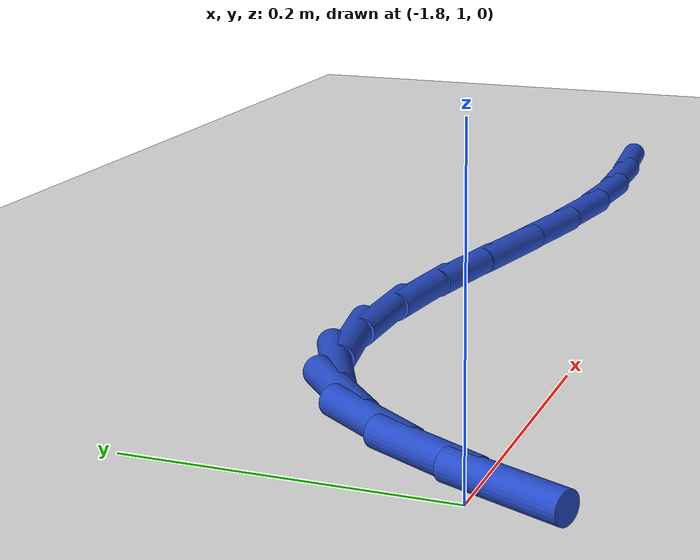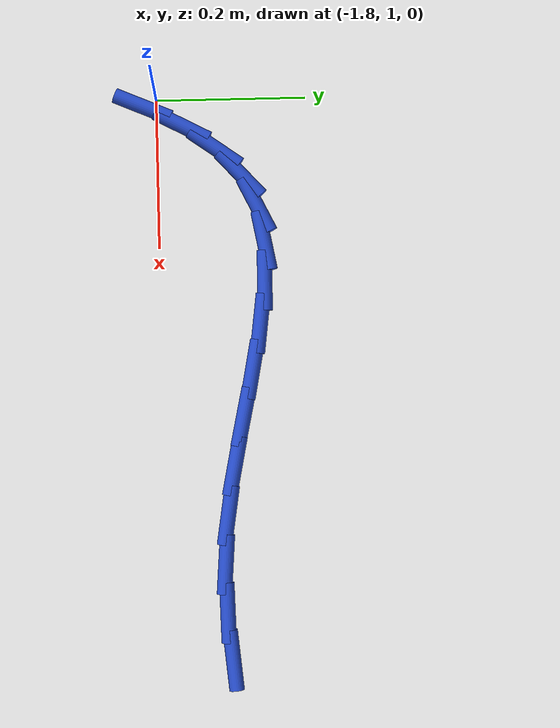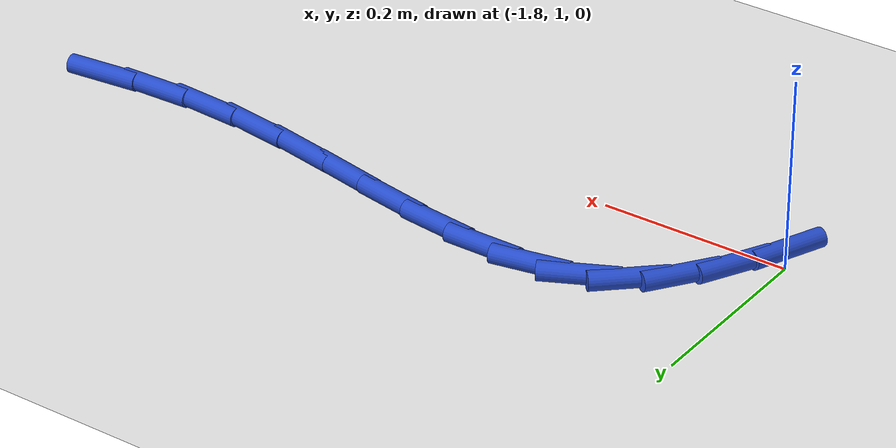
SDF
<sdf version="1.6">
 <world name="default">
  <model name="ground_plane">
   <static>1</static>
   <link name="link">
    <collision name="collision">
     <geometry><plane><normal>0 0 1</normal><size>100 100</size></plane></geometry>
     <surface><friction><ode><mu>100</mu><mu2>50</mu2></ode></friction></surface>
    </collision>
    <visual name="visual">
     <cast_shadows>0</cast_shadows>
     <geometry><plane><normal>0 0 1</normal><size>100 100</size></plane></geometry>
     <material>
      <script><uri>file://media/materials/scripts/gazebo.material</uri><name>Gazebo/WhiteGlow</name></script>
     </material>
    </visual>
   </link>
  </model>
  <model name="line">
   <link name="link_30">
    <pose>-1.0498719103204652 1.0883176864892183 0.01 0 1.57 0.09718270063862858</pose>
    <collision name="collision">
     <geometry><cylinder><radius>0.01</radius><length>0.08</length></cylinder></geometry>
    </collision>
    <visual name="visual">
     <material>
      <script><name>Gazebo/Blue</name><uri>file://media/materials/scripts/gazebo.material</uri></script>
     </material>
     <geometry><cylinder><radius>0.01</radius><length>0.08</length></cylinder></geometry>
    </visual>
   </link>
   <link name="link_31">
    <pose>-1.1126834191854906 1.0821942045824542 0.01 0 1.57 0.022810676233718515</pose>
    <collision name="collision">
     <geometry><cylinder><radius>0.01</radius><length>0.08</length></cylinder></geometry>
    </collision>
    <visual name="visual">
     <material>
      <script><name>Gazebo/Blue</name><uri>file://media/materials/scripts/gazebo.material</uri></script>
     </material>
     <geometry><cylinder><radius>0.01</radius><length>0.08</length></cylinder></geometry>
    </visual>
   </link>
   <link name="link_32">
    <pose>-1.1766359821798593 1.08073515030314 0.01 0 1.57 -0.07090799642772361</pose>
    <collision name="collision">
     <geometry><cylinder><radius>0.01</radius><length>0.08</length></cylinder></geometry>
    </collision>
    <visual name="visual">
     <material>
      <script><name>Gazebo/Blue</name><uri>file://media/materials/scripts/gazebo.material</uri></script>
     </material>
     <geometry><cylinder><radius>0.01</radius><length>0.08</length></cylinder></geometry>
    </visual>
   </link>
   <link name="link_33">
    <pose>-1.241578310477977 1.0853478140168826 0.01 0 1.57 -0.15147573958694005</pose>
    <collision name="collision">
     <geometry><cylinder><radius>0.01</radius><length>0.08</length></cylinder></geometry>
    </collision>
    <visual name="visual">
     <material>
      <script><name>Gazebo/Blue</name><uri>file://media/materials/scripts/gazebo.material</uri></script>
     </material>
     <geometry><cylinder><radius>0.01</radius><length>0.08</length></cylinder></geometry>
    </visual>
   </link>
   <link name="link_34">
    <pose>-1.3069281171353417 1.0953231355224624 0.01 0 1.57 -0.19688002033022228</pose>
    <collision name="collision">
     <geometry><cylinder><radius>0.01</radius><length>0.08</length></cylinder></geometry>
    </collision>
    <visual name="visual">
     <material>
      <script><name>Gazebo/Blue</name><uri>file://media/materials/scripts/gazebo.material</uri></script>
     </material>
     <geometry><cylinder><radius>0.01</radius><length>0.08</length></cylinder></geometry>
    </visual>
   </link>
   <link name="link_35">
    <pose>-1.371757349892032 1.108254226741495 0.01 0 1.57 -0.20886946783280821</pose>
    <collision name="collision">
     <geometry><cylinder><radius>0.01</radius><length>0.08</length></cylinder></geometry>
    </collision>
    <visual name="visual">
     <material>
      <script><name>Gazebo/Blue</name><uri>file://media/materials/scripts/gazebo.material</uri></script>
     </material>
     <geometry><cylinder><radius>0.01</radius><length>0.08</length></cylinder></geometry>
    </visual>
   </link>
   <link name="link_36">
    <pose>-1.4351282156021303 1.1216863684597107 0.01 0 1.57 -0.1860721372546972</pose>
    <collision name="collision">
     <geometry><cylinder><radius>0.01</radius><length>0.08</length></cylinder></geometry>
    </collision>
    <visual name="visual">
     <material>
      <script><name>Gazebo/Blue</name><uri>file://media/materials/scripts/gazebo.material</uri></script>
     </material>
     <geometry><cylinder><radius>0.01</radius><length>0.08</length></cylinder></geometry>
    </visual>
   </link>
   <link name="link_37">
    <pose>-1.4961029211197214 1.1331648414628397 0.01 0 1.57 -0.1220481199972483</pose>
    <collision name="collision">
     <geometry><cylinder><radius>0.01</radius><length>0.08</length></cylinder></geometry>
    </collision>
    <visual name="visual">
     <material>
      <script><name>Gazebo/Blue</name><uri>file://media/materials/scripts/gazebo.material</uri></script>
     </material>
     <geometry><cylinder><radius>0.01</radius><length>0.08</length></cylinder></geometry>
    </visual>
   </link>
   <link name="link_38">
    <pose>-1.5537436732988879 1.1402349265366125 0.01 0 1.57 -0.003878222757937736</pose>
    <collision name="collision">
     <geometry><cylinder><radius>0.01</radius><length>0.08</length></cylinder></geometry>
    </collision>
    <visual name="visual">
     <material>
      <script><name>Gazebo/Blue</name><uri>file://media/materials/scripts/gazebo.material</uri></script>
     </material>
     <geometry><cylinder><radius>0.01</radius><length>0.08</length></cylinder></geometry>
    </visual>
   </link>
   <link name="link_39">
    <pose>-1.6071126789937147 1.1404419044667593 0.01 0 1.57 0.18697121291227192</pose>
    <collision name="collision">
     <geometry><cylinder><radius>0.01</radius><length>0.08</length></cylinder></geometry>
    </collision>
    <visual name="visual">
     <material>
      <script><name>Gazebo/Blue</name><uri>file://media/materials/scripts/gazebo.material</uri></script>
     </material>
     <geometry><cylinder><radius>0.01</radius><length>0.08</length></cylinder></geometry>
    </visual>
   </link>
   <link name="link_40">
    <pose>-1.6552721450582846 1.13133105603901 0.01 0 1.57 0.46067866419597864</pose>
    <collision name="collision">
     <geometry><cylinder><radius>0.01</radius><length>0.08</length></cylinder></geometry>
    </collision>
    <visual name="visual">
     <material>
      <script><name>Gazebo/Blue</name><uri>file://media/materials/scripts/gazebo.material</uri></script>
     </material>
     <geometry><cylinder><radius>0.01</radius><length>0.08</length></cylinder></geometry>
    </visual>
   </link>
   <link name="link_41">
    <pose>-1.6972968299751958 1.1104744440729537 0.01 0 1.57 0.7497085219382185</pose>
    <collision name="collision">
     <geometry><cylinder><radius>0.01</radius><length>0.08</length></cylinder></geometry>
    </collision>
    <visual name="visual">
     <material>
      <script><name>Gazebo/Blue</name><uri>file://media/materials/scripts/gazebo.material</uri></script>
     </material>
     <geometry><cylinder><radius>0.01</radius><length>0.08</length></cylinder></geometry>
    </visual>
   </link>
   <link name="link_42">
    <pose>-1.7330695014629895 1.0771682208712179 0.01 0 1.57 0.9587500073127391</pose>
    <collision name="collision">
     <geometry><cylinder><radius>0.01</radius><length>0.08</length></cylinder></geometry>
    </collision>
    <visual name="visual">
     <material>
      <script><name>Gazebo/Blue</name><uri>file://media/materials/scripts/gazebo.material</uri></script>
     </material>
     <geometry><cylinder><radius>0.01</radius><length>0.08</length></cylinder></geometry>
    </visual>
   </link>
   <link name="link_43">
    <pose>-1.763757979599366 1.0334505188512824 0.01 0 1.57 1.092398278612318</pose>
    <collision name="collision">
     <geometry><cylinder><radius>0.01</radius><length>0.08</length></cylinder></geometry>
    </collision>
    <visual name="visual">
     <material>
      <script><name>Gazebo/Blue</name><uri>file://media/materials/scripts/gazebo.material</uri></script>
     </material>
     <geometry><cylinder><radius>0.01</radius><length>0.08</length></cylinder></geometry>
    </visual>
   </link>
   <link name="link_44">
    <pose>-1.7906445312527173 0.9816036712385211 0.01 0 1.57 1.1711727641278513</pose>
    <collision name="collision">
     <geometry><cylinder><radius>0.01</radius><length>0.08</length></cylinder></geometry>
    </collision>
    <visual name="visual">
     <material>
      <script><name>Gazebo/Blue</name><uri>file://media/materials/scripts/gazebo.material</uri></script>
     </material>
     <geometry><cylinder><radius>0.01</radius><length>0.08</length></cylinder></geometry>
    </visual>
   </link>
  </model>
 </world>
</sdf>
